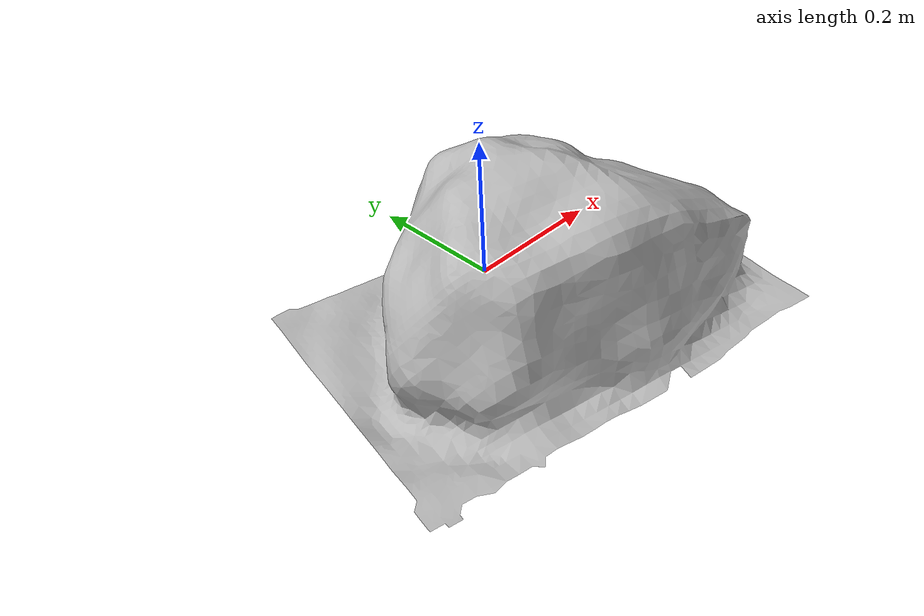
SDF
<?xml version='1.0'?>
<sdf version="1.4">
<model name="rock_2">
  <pose>0 0 0 0 0 0</pose>
  <static>true</static>
    <link name="link">
      <collision name="collision">
          <geometry>
            <mesh><uri>model://rock_2/meshes/rock_2.dae</uri></mesh>
          </geometry>
      </collision>
        <visual name="visual">
          <geometry>
            <mesh><uri>model://rock_2/meshes/rock_2.dae</uri></mesh>
          </geometry>
        </visual>
      </link>
  </model>
</sdf>
